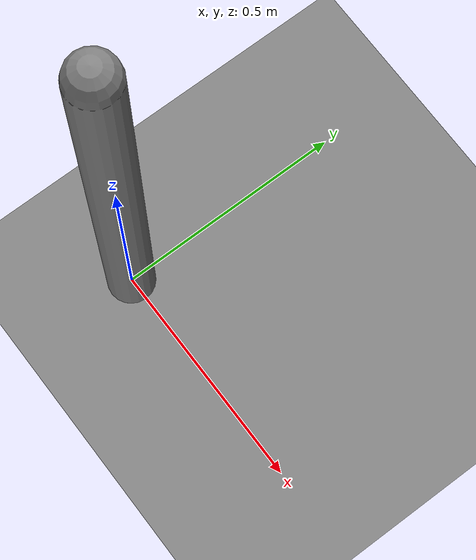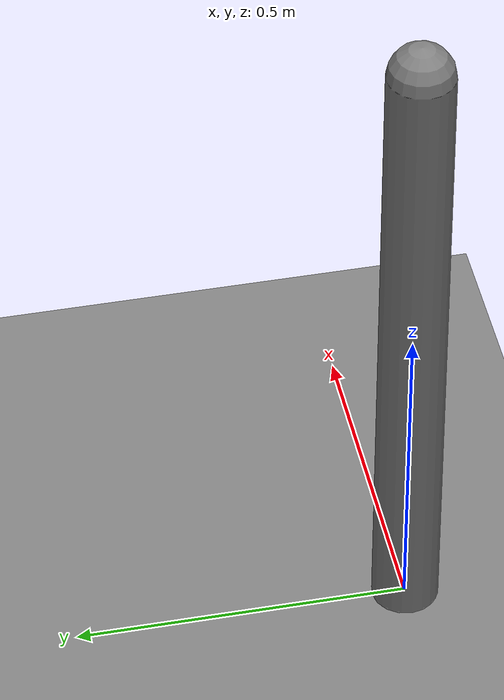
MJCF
<mujoco model="inverted_pendulum">
    <compiler angle="degree" coordinate="local"/>
    <option timestep="0.01"/>

    <worldbody>
        <body name="cart" pos="0 0 0">
            <joint name="slide" type="slide" axis="1 0 0"/>
            <geom name="track" type="plane" size="10 10 0.1" pos="0 0 0"/>
            <body name="pole" pos="0 0 0">
                <joint name="hinge" type="hinge" axis="0 1 0"/>
                <geom name="pole_geom" type="capsule" fromto="0 0 0 0 0 1" size="0.05"/>
            </body>
        </body>
    </worldbody>

    <actuator>
        <motor joint="slide" ctrlrange="-10 10" ctrllimited="true"/>
    </actuator>
</mujoco>
